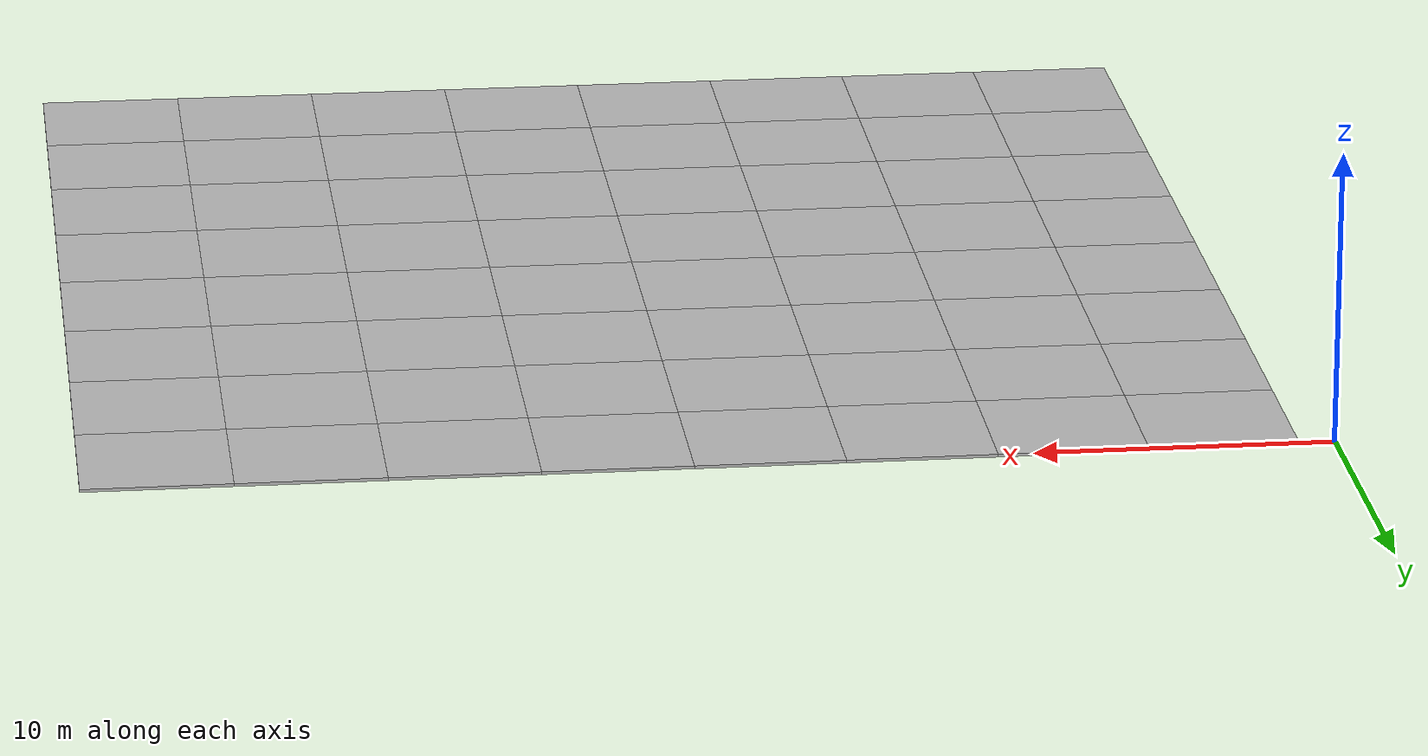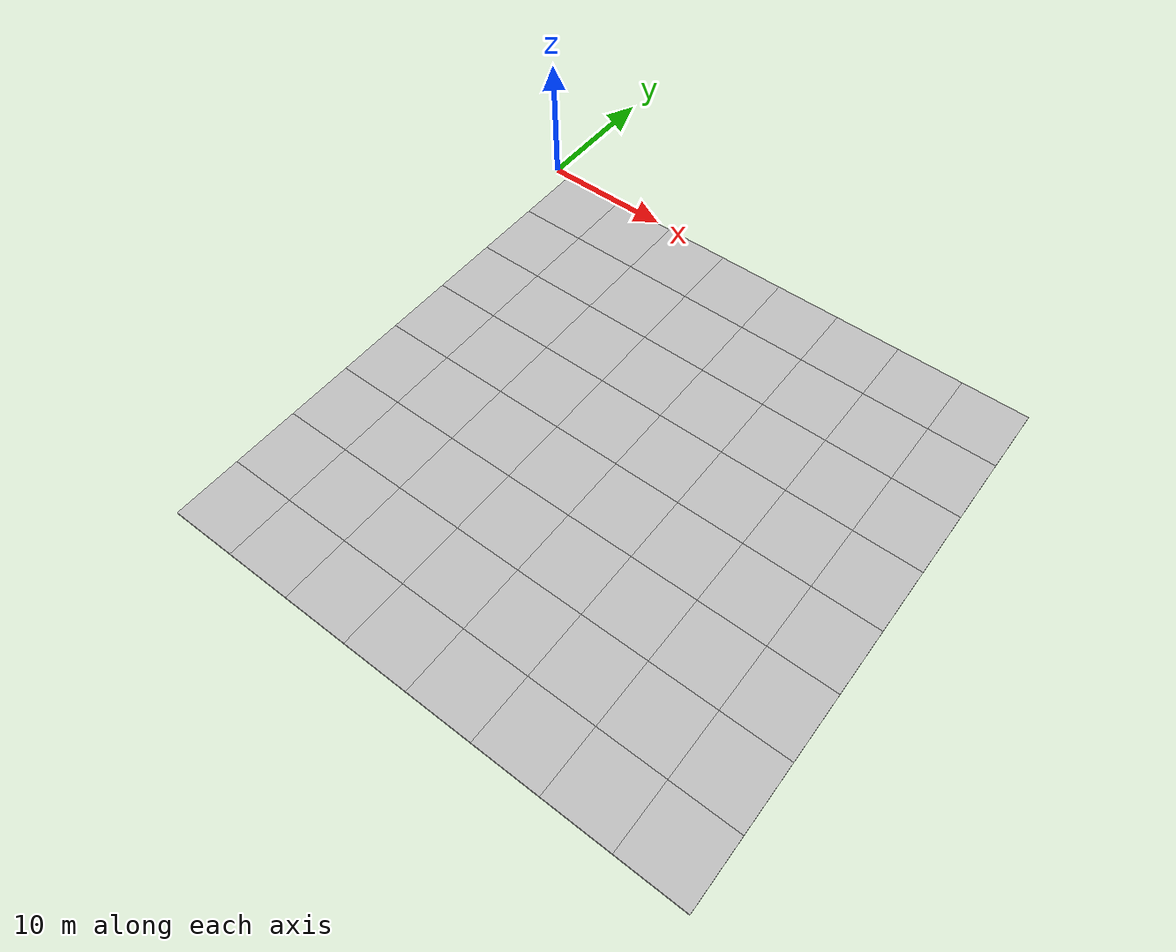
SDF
<sdf version="1.7">
 <world name="default">
  <model name="mud_plane_80x80_0">
   <model name="mud_plane_40x40_1">
    <model name="mud_plane_20x20">
     <model name="mud_plane">
      <static>1</static>
      <link name="link">
       <collision name="collision"><geometry><box><size>10 10 0.1</size></box></geometry></collision>
       <visual name="visual_1">
        <pose>-2.5 2.5 -0.05 0 -0 0</pose>
        <cast_shadows>0</cast_shadows>
        <geometry><box><size>5 5 0.1</size></box></geometry>
        <material>
         <script>
          <uri>model://mud_plane/materials/scripts</uri>
          <uri>model://mud_plane/materials/textures</uri>
          <name>vrc/mud</name>
         </script>
        </material>
       </visual>
       <visual name="visual_2">
        <pose>2.5 2.5 -0.05 0 -0 0</pose>
        <cast_shadows>0</cast_shadows>
        <geometry><box><size>5 5 0.1</size></box></geometry>
        <material>
         <script>
          <uri>model://mud_plane/materials/scripts</uri>
          <uri>model://mud_plane/materials/textures</uri>
          <name>vrc/mud</name>
         </script>
        </material>
       </visual>
       <visual name="visual_3">
        <pose>2.5 -2.5 -0.05 0 -0 0</pose>
        <cast_shadows>0</cast_shadows>
        <geometry><box><size>5 5 0.1</size></box></geometry>
        <material>
         <script>
          <uri>model://mud_plane/materials/scripts</uri>
          <uri>model://mud_plane/materials/textures</uri>
          <name>vrc/mud</name>
         </script>
        </material>
       </visual>
       <visual name="visual_4">
        <pose>-2.5 -2.5 -0.05 0 -0 0</pose>
        <cast_shadows>0</cast_shadows>
        <geometry><box><size>5 5 0.1</size></box></geometry>
        <material>
         <script>
          <uri>model://mud_plane/materials/scripts</uri>
          <uri>model://mud_plane/materials/textures</uri>
          <name>vrc/mud</name>
         </script>
        </material>
       </visual>
      </link>
      <pose>-4.99986 -4.99991 0 0 -0 0</pose>
     </model>
     <model name="mud_plane_0">
      <static>1</static>
      <link name="link">
       <collision name="collision"><geometry><box><size>10 10 0.1</size></box></geometry></collision>
       <visual name="visual_1">
        <pose>-2.5 2.5 -0.05 0 -0 0</pose>
        <cast_shadows>0</cast_shadows>
        <geometry><box><size>5 5 0.1</size></box></geometry>
        <material>
         <script>
          <uri>model://mud_plane/materials/scripts</uri>
          <uri>model://mud_plane/materials/textures</uri>
          <name>vrc/mud</name>
         </script>
        </material>
       </visual>
       <visual name="visual_2">
        <pose>2.5 2.5 -0.05 0 -0 0</pose>
        <cast_shadows>0</cast_shadows>
        <geometry><box><size>5 5 0.1</size></box></geometry>
        <material>
         <script>
          <uri>model://mud_plane/materials/scripts</uri>
          <uri>model://mud_plane/materials/textures</uri>
          <name>vrc/mud</name>
         </script>
        </material>
       </visual>
       <visual name="visual_3">
        <pose>2.5 -2.5 -0.05 0 -0 0</pose>
        <cast_shadows>0</cast_shadows>
        <geometry><box><size>5 5 0.1</size></box></geometry>
        <material>
         <script>
          <uri>model://mud_plane/materials/scripts</uri>
          <uri>model://mud_plane/materials/textures</uri>
          <name>vrc/mud</name>
         </script>
        </material>
       </visual>
       <visual name="visual_4">
        <pose>-2.5 -2.5 -0.05 0 -0 0</pose>
        <cast_shadows>0</cast_shadows>
        <geometry><box><size>5 5 0.1</size></box></geometry>
        <material>
         <script>
          <uri>model://mud_plane/materials/scripts</uri>
          <uri>model://mud_plane/materials/textures</uri>
          <name>vrc/mud</name>
         </script>
        </material>
       </visual>
      </link>
      <pose>-4.99946 4.99954 0 0 -0 0</pose>
     </model>
     <model name="mud_plane_1">
      <static>1</static>
      <link name="link">
       <collision name="collision"><geometry><box><size>10 10 0.1</size></box></geometry></collision>
       <visual name="visual_1">
        <pose>-2.5 2.5 -0.05 0 -0 0</pose>
        <cast_shadows>0</cast_shadows>
        <geometry><box><size>5 5 0.1</size></box></geometry>
        <material>
         <script>
          <uri>model://mud_plane/materials/scripts</uri>
          <uri>model://mud_plane/materials/textures</uri>
          <name>vrc/mud</name>
         </script>
        </material>
       </visual>
       <visual name="visual_2">
        <pose>2.5 2.5 -0.05 0 -0 0</pose>
        <cast_shadows>0</cast_shadows>
        <geometry><box><size>5 5 0.1</size></box></geometry>
        <material>
         <script>
          <uri>model://mud_plane/materials/scripts</uri>
          <uri>model://mud_plane/materials/textures</uri>
          <name>vrc/mud</name>
         </script>
        </material>
       </visual>
       <visual name="visual_3">
        <pose>2.5 -2.5 -0.05 0 -0 0</pose>
        <cast_shadows>0</cast_shadows>
        <geometry><box><size>5 5 0.1</size></box></geometry>
        <material>
         <script>
          <uri>model://mud_plane/materials/scripts</uri>
          <uri>model://mud_plane/materials/textures</uri>
          <name>vrc/mud</name>
         </script>
        </material>
       </visual>
       <visual name="visual_4">
        <pose>-2.5 -2.5 -0.05 0 -0 0</pose>
        <cast_shadows>0</cast_shadows>
        <geometry><box><size>5 5 0.1</size></box></geometry>
        <material>
         <script>
          <uri>model://mud_plane/materials/scripts</uri>
          <uri>model://mud_plane/materials/textures</uri>
          <name>vrc/mud</name>
         </script>
        </material>
       </visual>
      </link>
      <pose>4.99964 -4.99949 0 0 -0 0</pose>
     </model>
     <model name="mud_plane_2">
      <static>1</static>
      <link name="link">
       <collision name="collision"><geometry><box><size>10 10 0.1</size></box></geometry></collision>
       <visual name="visual_1">
        <pose>-2.5 2.5 -0.05 0 -0 0</pose>
        <cast_shadows>0</cast_shadows>
        <geometry><box><size>5 5 0.1</size></box></geometry>
        <material>
         <script>
          <uri>model://mud_plane/materials/scripts</uri>
          <uri>model://mud_plane/materials/textures</uri>
          <name>vrc/mud</name>
         </script>
        </material>
       </visual>
       <visual name="visual_2">
        <pose>2.5 2.5 -0.05 0 -0 0</pose>
        <cast_shadows>0</cast_shadows>
        <geometry><box><size>5 5 0.1</size></box></geometry>
        <material>
         <script>
          <uri>model://mud_plane/materials/scripts</uri>
          <uri>model://mud_plane/materials/textures</uri>
          <name>vrc/mud</name>
         </script>
        </material>
       </visual>
       <visual name="visual_3">
        <pose>2.5 -2.5 -0.05 0 -0 0</pose>
        <cast_shadows>0</cast_shadows>
        <geometry><box><size>5 5 0.1</size></box></geometry>
        <material>
         <script>
          <uri>model://mud_plane/materials/scripts</uri>
          <uri>model://mud_plane/materials/textures</uri>
          <name>vrc/mud</name>
         </script>
        </material>
       </visual>
       <visual name="visual_4">
        <pose>-2.5 -2.5 -0.05 0 -0 0</pose>
        <cast_shadows>0</cast_shadows>
        <geometry><box><size>5 5 0.1</size></box></geometry>
        <material>
         <script>
          <uri>model://mud_plane/materials/scripts</uri>
          <uri>model://mud_plane/materials/textures</uri>
          <name>vrc/mud</name>
         </script>
        </material>
       </visual>
      </link>
      <pose>4.99967 4.99986 0 0 -0 0</pose>
     </model>
     <static>0</static>
     <pose>-9.99895 9.99843 0 0 -0 0</pose>
    </model>
    <model name="mud_plane_20x20_0">
     <model name="mud_plane">
      <static>1</static>
      <link name="link">
       <collision name="collision"><geometry><box><size>10 10 0.1</size></box></geometry></collision>
       <visual name="visual_1">
        <pose>-2.5 2.5 -0.05 0 -0 0</pose>
        <cast_shadows>0</cast_shadows>
        <geometry><box><size>5 5 0.1</size></box></geometry>
        <material>
         <script>
          <uri>model://mud_plane/materials/scripts</uri>
          <uri>model://mud_plane/materials/textures</uri>
          <name>vrc/mud</name>
         </script>
        </material>
       </visual>
       <visual name="visual_2">
        <pose>2.5 2.5 -0.05 0 -0 0</pose>
        <cast_shadows>0</cast_shadows>
        <geometry><box><size>5 5 0.1</size></box></geometry>
        <material>
         <script>
          <uri>model://mud_plane/materials/scripts</uri>
          <uri>model://mud_plane/materials/textures</uri>
          <name>vrc/mud</name>
         </script>
        </material>
       </visual>
       <visual name="visual_3">
        <pose>2.5 -2.5 -0.05 0 -0 0</pose>
        <cast_shadows>0</cast_shadows>
        <geometry><box><size>5 5 0.1</size></box></geometry>
        <material>
         <script>
          <uri>model://mud_plane/materials/scripts</uri>
          <uri>model://mud_plane/materials/textures</uri>
          <name>vrc/mud</name>
         </script>
        </material>
       </visual>
       <visual name="visual_4">
        <pose>-2.5 -2.5 -0.05 0 -0 0</pose>
        <cast_shadows>0</cast_shadows>
        <geometry><box><size>5 5 0.1</size></box></geometry>
        <material>
         <script>
          <uri>model://mud_plane/materials/scripts</uri>
          <uri>model://mud_plane/materials/textures</uri>
          <name>vrc/mud</name>
         </script>
        </material>
       </visual>
      </link>
      <pose>-4.99986 -4.99991 0 0 -0 0</pose>
     </model>
     <model name="mud_plane_0">
      <static>1</static>
      <link name="link">
       <collision name="collision"><geometry><box><size>10 10 0.1</size></box></geometry></collision>
       <visual name="visual_1">
        <pose>-2.5 2.5 -0.05 0 -0 0</pose>
        <cast_shadows>0</cast_shadows>
        <geometry><box><size>5 5 0.1</size></box></geometry>
        <material>
         <script>
          <uri>model://mud_plane/materials/scripts</uri>
          <uri>model://mud_plane/materials/textures</uri>
          <name>vrc/mud</name>
         </script>
        </material>
       </visual>
       <visual name="visual_2">
        <pose>2.5 2.5 -0.05 0 -0 0</pose>
        <cast_shadows>0</cast_shadows>
        <geometry><box><size>5 5 0.1</size></box></geometry>
        <material>
         <script>
          <uri>model://mud_plane/materials/scripts</uri>
          <uri>model://mud_plane/materials/textures</uri>
          <name>vrc/mud</name>
         </script>
        </material>
       </visual>
       <visual name="visual_3">
        <pose>2.5 -2.5 -0.05 0 -0 0</pose>
        <cast_shadows>0</cast_shadows>
        <geometry><box><size>5 5 0.1</size></box></geometry>
        <material>
         <script>
          <uri>model://mud_plane/materials/scripts</uri>
          <uri>model://mud_plane/materials/textures</uri>
          <name>vrc/mud</name>
         </script>
        </material>
       </visual>
       <visual name="visual_4">
        <pose>-2.5 -2.5 -0.05 0 -0 0</pose>
        <cast_shadows>0</cast_shadows>
        <geometry><box><size>5 5 0.1</size></box></geometry>
        <material>
         <script>
          <uri>model://mud_plane/materials/scripts</uri>
          <uri>model://mud_plane/materials/textures</uri>
          <name>vrc/mud</name>
         </script>
        </material>
       </visual>
      </link>
      <pose>-4.99946 4.99954 0 0 -0 0</pose>
     </model>
     <model name="mud_plane_1">
      <static>1</static>
      <link name="link">
       <collision name="collision"><geometry><box><size>10 10 0.1</size></box></geometry></collision>
       <visual name="visual_1">
        <pose>-2.5 2.5 -0.05 0 -0 0</pose>
        <cast_shadows>0</cast_shadows>
        <geometry><box><size>5 5 0.1</size></box></geometry>
        <material>
         <script>
          <uri>model://mud_plane/materials/scripts</uri>
          <uri>model://mud_plane/materials/textures</uri>
          <name>vrc/mud</name>
         </script>
        </material>
       </visual>
       <visual name="visual_2">
        <pose>2.5 2.5 -0.05 0 -0 0</pose>
        <cast_shadows>0</cast_shadows>
        <geometry><box><size>5 5 0.1</size></box></geometry>
        <material>
         <script>
          <uri>model://mud_plane/materials/scripts</uri>
          <uri>model://mud_plane/materials/textures</uri>
          <name>vrc/mud</name>
         </script>
        </material>
       </visual>
       <visual name="visual_3">
        <pose>2.5 -2.5 -0.05 0 -0 0</pose>
        <cast_shadows>0</cast_shadows>
        <geometry><box><size>5 5 0.1</size></box></geometry>
        <material>
         <script>
          <uri>model://mud_plane/materials/scripts</uri>
          <uri>model://mud_plane/materials/textures</uri>
          <name>vrc/mud</name>
         </script>
        </material>
       </visual>
       <visual name="visual_4">
        <pose>-2.5 -2.5 -0.05 0 -0 0</pose>
        <cast_shadows>0</cast_shadows>
        <geometry><box><size>5 5 0.1</size></box></geometry>
        <material>
         <script>
          <uri>model://mud_plane/materials/scripts</uri>
          <uri>model://mud_plane/materials/textures</uri>
          <name>vrc/mud</name>
         </script>
        </material>
       </visual>
      </link>
      <pose>4.99964 -4.99949 0 0 -0 0</pose>
     </model>
     <model name="mud_plane_2">
      <static>1</static>
      <link name="link">
       <collision name="collision"><geometry><box><size>10 10 0.1</size></box></geometry></collision>
       <visual name="visual_1">
        <pose>-2.5 2.5 -0.05 0 -0 0</pose>
        <cast_shadows>0</cast_shadows>
        <geometry><box><size>5 5 0.1</size></box></geometry>
        <material>
         <script>
          <uri>model://mud_plane/materials/scripts</uri>
          <uri>model://mud_plane/materials/textures</uri>
          <name>vrc/mud</name>
         </script>
        </material>
       </visual>
       <visual name="visual_2">
        <pose>2.5 2.5 -0.05 0 -0 0</pose>
        <cast_shadows>0</cast_shadows>
        <geometry><box><size>5 5 0.1</size></box></geometry>
        <material>
         <script>
          <uri>model://mud_plane/materials/scripts</uri>
          <uri>model://mud_plane/materials/textures</uri>
          <name>vrc/mud</name>
         </script>
        </material>
       </visual>
       <visual name="visual_3">
        <pose>2.5 -2.5 -0.05 0 -0 0</pose>
        <cast_shadows>0</cast_shadows>
        <geometry><box><size>5 5 0.1</size></box></geometry>
        <material>
         <script>
          <uri>model://mud_plane/materials/scripts</uri>
          <uri>model://mud_plane/materials/textures</uri>
          <name>vrc/mud</name>
         </script>
        </material>
       </visual>
       <visual name="visual_4">
        <pose>-2.5 -2.5 -0.05 0 -0 0</pose>
        <cast_shadows>0</cast_shadows>
        <geometry><box><size>5 5 0.1</size></box></geometry>
        <material>
         <script>
          <uri>model://mud_plane/materials/scripts</uri>
          <uri>model://mud_plane/materials/textures</uri>
          <name>vrc/mud</name>
         </script>
        </material>
       </visual>
      </link>
      <pose>4.99967 4.99986 0 0 -0 0</pose>
     </model>
     <static>0</static>
     <pose>9.99933 9.9997 0 0 -0 0</pose>
    </model>
    <model name="mud_plane_20x20_1">
     <model name="mud_plane">
      <static>1</static>
      <link name="link">
       <collision name="collision"><geometry><box><size>10 10 0.1</size></box></geometry></collision>
       <visual name="visual_1">
        <pose>-2.5 2.5 -0.05 0 -0 0</pose>
        <cast_shadows>0</cast_shadows>
        <geometry><box><size>5 5 0.1</size></box></geometry>
        <material>
         <script>
          <uri>model://mud_plane/materials/scripts</uri>
          <uri>model://mud_plane/materials/textures</uri>
          <name>vrc/mud</name>
         </script>
        </material>
       </visual>
       <visual name="visual_2">
        <pose>2.5 2.5 -0.05 0 -0 0</pose>
        <cast_shadows>0</cast_shadows>
        <geometry><box><size>5 5 0.1</size></box></geometry>
        <material>
         <script>
          <uri>model://mud_plane/materials/scripts</uri>
          <uri>model://mud_plane/materials/textures</uri>
          <name>vrc/mud</name>
         </script>
        </material>
       </visual>
       <visual name="visual_3">
        <pose>2.5 -2.5 -0.05 0 -0 0</pose>
        <cast_shadows>0</cast_shadows>
        <geometry><box><size>5 5 0.1</size></box></geometry>
        <material>
         <script>
          <uri>model://mud_plane/materials/scripts</uri>
          <uri>model://mud_plane/materials/textures</uri>
          <name>vrc/mud</name>
         </script>
        </material>
       </visual>
       <visual name="visual_4">
        <pose>-2.5 -2.5 -0.05 0 -0 0</pose>
        <cast_shadows>0</cast_shadows>
        <geometry><box><size>5 5 0.1</size></box></geometry>
        <material>
         <script>
          <uri>model://mud_plane/materials/scripts</uri>
          <uri>model://mud_plane/materials/textures</uri>
          <name>vrc/mud</name>
         </script>
        </material>
       </visual>
      </link>
      <pose>-4.99986 -4.99991 0 0 -0 0</pose>
     </model>
     <model name="mud_plane_0">
      <static>1</static>
      <link name="link">
       <collision name="collision"><geometry><box><size>10 10 0.1</size></box></geometry></collision>
       <visual name="visual_1">
        <pose>-2.5 2.5 -0.05 0 -0 0</pose>
        <cast_shadows>0</cast_shadows>
        <geometry><box><size>5 5 0.1</size></box></geometry>
        <material>
         <script>
          <uri>model://mud_plane/materials/scripts</uri>
          <uri>model://mud_plane/materials/textures</uri>
          <name>vrc/mud</name>
         </script>
        </material>
       </visual>
       <visual name="visual_2">
        <pose>2.5 2.5 -0.05 0 -0 0</pose>
        <cast_shadows>0</cast_shadows>
        <geometry><box><size>5 5 0.1</size></box></geometry>
        <material>
         <script>
          <uri>model://mud_plane/materials/scripts</uri>
          <uri>model://mud_plane/materials/textures</uri>
          <name>vrc/mud</name>
         </script>
        </material>
       </visual>
       <visual name="visual_3">
        <pose>2.5 -2.5 -0.05 0 -0 0</pose>
        <cast_shadows>0</cast_shadows>
        <geometry><box><size>5 5 0.1</size></box></geometry>
        <material>
         <script>
          <uri>model://mud_plane/materials/scripts</uri>
          <uri>model://mud_plane/materials/textures</uri>
          <name>vrc/mud</name>
         </script>
        </material>
       </visual>
       <visual name="visual_4">
        <pose>-2.5 -2.5 -0.05 0 -0 0</pose>
        <cast_shadows>0</cast_shadows>
        <geometry><box><size>5 5 0.1</size></box></geometry>
        <material>
         <script>
          <uri>model://mud_plane/materials/scripts</uri>
          <uri>model://mud_plane/materials/textures</uri>
          <name>vrc/mud</name>
         </script>
        </material>
       </visual>
      </link>
      <pose>-4.99946 4.99954 0 0 -0 0</pose>
     </model>
     <model name="mud_plane_1">
      <static>1</static>
      <link name="link">
       <collision name="collision"><geometry><box><size>10 10 0.1</size></box></geometry></collision>
       <visual name="visual_1">
        <pose>-2.5 2.5 -0.05 0 -0 0</pose>
        <cast_shadows>0</cast_shadows>
        <geometry><box><size>5 5 0.1</size></box></geometry>
        <material>
         <script>
          <uri>model://mud_plane/materials/scripts</uri>
          <uri>model://mud_plane/materials/textures</uri>
          <name>vrc/mud</name>
         </script>
        </material>
       </visual>
       <visual name="visual_2">
        <pose>2.5 2.5 -0.05 0 -0 0</pose>
        <cast_shadows>0</cast_shadows>
        <geometry><box><size>5 5 0.1</size></box></geometry>
        <material>
         <script>
          <uri>model://mud_plane/materials/scripts</uri>
          <uri>model://mud_plane/materials/textures</uri>
          <name>vrc/mud</name>
         </script>
        </material>
       </visual>
       <visual name="visual_3">
        <pose>2.5 -2.5 -0.05 0 -0 0</pose>
        <cast_shadows>0</cast_shadows>
        <geometry><box><size>5 5 0.1</size></box></geometry>
        <material>
         <script>
          <uri>model://mud_plane/materials/scripts</uri>
          <uri>model://mud_plane/materials/textures</uri>
          <name>vrc/mud</name>
         </script>
        </material>
       </visual>
       <visual name="visual_4">
        <pose>-2.5 -2.5 -0.05 0 -0 0</pose>
        <cast_shadows>0</cast_shadows>
        <geometry><box><size>5 5 0.1</size></box></geometry>
        <material>
         <script>
          <uri>model://mud_plane/materials/scripts</uri>
          <uri>model://mud_plane/materials/textures</uri>
          <name>vrc/mud</name>
         </script>
        </material>
       </visual>
      </link>
      <pose>4.99964 -4.99949 0 0 -0 0</pose>
     </model>
     <model name="mud_plane_2">
      <static>1</static>
      <link name="link">
       <collision name="collision"><geometry><box><size>10 10 0.1</size></box></geometry></collision>
       <visual name="visual_1">
        <pose>-2.5 2.5 -0.05 0 -0 0</pose>
        <cast_shadows>0</cast_shadows>
        <geometry><box><size>5 5 0.1</size></box></geometry>
        <material>
         <script>
          <uri>model://mud_plane/materials/scripts</uri>
          <uri>model://mud_plane/materials/textures</uri>
          <name>vrc/mud</name>
         </script>
        </material>
       </visual>
       <visual name="visual_2">
        <pose>2.5 2.5 -0.05 0 -0 0</pose>
        <cast_shadows>0</cast_shadows>
        <geometry><box><size>5 5 0.1</size></box></geometry>
        <material>
         <script>
          <uri>model://mud_plane/materials/scripts</uri>
          <uri>model://mud_plane/materials/textures</uri>
          <name>vrc/mud</name>
         </script>
        </material>
       </visual>
       <visual name="visual_3">
        <pose>2.5 -2.5 -0.05 0 -0 0</pose>
        <cast_shadows>0</cast_shadows>
        <geometry><box><size>5 5 0.1</size></box></geometry>
        <material>
         <script>
          <uri>model://mud_plane/materials/scripts</uri>
          <uri>model://mud_plane/materials/textures</uri>
          <name>vrc/mud</name>
         </script>
        </material>
       </visual>
       <visual name="visual_4">
        <pose>-2.5 -2.5 -0.05 0 -0 0</pose>
        <cast_shadows>0</cast_shadows>
        <geometry><box><size>5 5 0.1</size></box></geometry>
        <material>
         <script>
          <uri>model://mud_plane/materials/scripts</uri>
          <uri>model://mud_plane/materials/textures</uri>
          <name>vrc/mud</name>
         </script>
        </material>
       </visual>
      </link>
      <pose>4.99967 4.99986 0 0 -0 0</pose>
     </model>
     <static>0</static>
     <pose>9.9993 -9.99877 0 0 -0 0</pose>
    </model>
    <model name="mud_plane_20x20_2">
     <model name="mud_plane">
      <static>1</static>
      <link name="link">
       <collision name="collision"><geometry><box><size>10 10 0.1</size></box></geometry></collision>
       <visual name="visual_1">
        <pose>-2.5 2.5 -0.05 0 -0 0</pose>
        <cast_shadows>0</cast_shadows>
        <geometry><box><size>5 5 0.1</size></box></geometry>
        <material>
         <script>
          <uri>model://mud_plane/materials/scripts</uri>
          <uri>model://mud_plane/materials/textures</uri>
          <name>vrc/mud</name>
         </script>
        </material>
       </visual>
       <visual name="visual_2">
        <pose>2.5 2.5 -0.05 0 -0 0</pose>
        <cast_shadows>0</cast_shadows>
        <geometry><box><size>5 5 0.1</size></box></geometry>
        <material>
         <script>
          <uri>model://mud_plane/materials/scripts</uri>
          <uri>model://mud_plane/materials/textures</uri>
          <name>vrc/mud</name>
         </script>
        </material>
       </visual>
       <visual name="visual_3">
        <pose>2.5 -2.5 -0.05 0 -0 0</pose>
        <cast_shadows>0</cast_shadows>
        <geometry><box><size>5 5 0.1</size></box></geometry>
        <material>
         <script>
          <uri>model://mud_plane/materials/scripts</uri>
          <uri>model://mud_plane/materials/textures</uri>
          <name>vrc/mud</name>
         </script>
        </material>
       </visual>
       <visual name="visual_4">
        <pose>-2.5 -2.5 -0.05 0 -0 0</pose>
        <cast_shadows>0</cast_shadows>
        <geometry><box><size>5 5 0.1</size></box></geometry>
        <material>
         <script>
          <uri>model://mud_plane/materials/scripts</uri>
          <uri>model://mud_plane/materials/textures</uri>
          <name>vrc/mud</name>
         </script>
        </material>
       </visual>
      </link>
      <pose>-4.99986 -4.99991 0 0 -0 0</pose>
     </model>
     <model name="mud_plane_0">
      <static>1</static>
      <link name="link">
       <collision name="collision"><geometry><box><size>10 10 0.1</size></box></geometry></collision>
       <visual name="visual_1">
        <pose>-2.5 2.5 -0.05 0 -0 0</pose>
        <cast_shadows>0</cast_shadows>
        <geometry><box><size>5 5 0.1</size></box></geometry>
        <material>
         <script>
          <uri>model://mud_plane/materials/scripts</uri>
          <uri>model://mud_plane/materials/textures</uri>
          <name>vrc/mud</name>
         </script>
        </material>
       </visual>
       <visual name="visual_2">
        <pose>2.5 2.5 -0.05 0 -0 0</pose>
        <cast_shadows>0</cast_shadows>
        <geometry><box><size>5 5 0.1</size></box></geometry>
        <material>
         <script>
          <uri>model://mud_plane/materials/scripts</uri>
          <uri>model://mud_plane/materials/textures</uri>
          <name>vrc/mud</name>
         </script>
        </material>
       </visual>
       <visual name="visual_3">
        <pose>2.5 -2.5 -0.05 0 -0 0</pose>
        <cast_shadows>0</cast_shadows>
        <geometry><box><size>5 5 0.1</size></box></geometry>
        <material>
         <script>
          <uri>model://mud_plane/materials/scripts</uri>
          <uri>model://mud_plane/materials/textures</uri>
          <name>vrc/mud</name>
         </script>
        </material>
       </visual>
       <visual name="visual_4">
        <pose>-2.5 -2.5 -0.05 0 -0 0</pose>
        <cast_shadows>0</cast_shadows>
        <geometry><box><size>5 5 0.1</size></box></geometry>
        <material>
         <script>
          <uri>model://mud_plane/materials/scripts</uri>
          <uri>model://mud_plane/materials/textures</uri>
          <name>vrc/mud</name>
         </script>
        </material>
       </visual>
      </link>
      <pose>-4.99946 4.99954 0 0 -0 0</pose>
     </model>
     <model name="mud_plane_1">
      <static>1</static>
      <link name="link">
       <collision name="collision"><geometry><box><size>10 10 0.1</size></box></geometry></collision>
       <visual name="visual_1">
        <pose>-2.5 2.5 -0.05 0 -0 0</pose>
        <cast_shadows>0</cast_shadows>
        <geometry><box><size>5 5 0.1</size></box></geometry>
        <material>
         <script>
          <uri>model://mud_plane/materials/scripts</uri>
          <uri>model://mud_plane/materials/textures</uri>
          <name>vrc/mud</name>
         </script>
        </material>
       </visual>
       <visual name="visual_2">
        <pose>2.5 2.5 -0.05 0 -0 0</pose>
        <cast_shadows>0</cast_shadows>
        <geometry><box><size>5 5 0.1</size></box></geometry>
        <material>
         <script>
          <uri>model://mud_plane/materials/scripts</uri>
          <uri>model://mud_plane/materials/textures</uri>
          <name>vrc/mud</name>
         </script>
        </material>
       </visual>
       <visual name="visual_3">
        <pose>2.5 -2.5 -0.05 0 -0 0</pose>
        <cast_shadows>0</cast_shadows>
        <geometry><box><size>5 5 0.1</size></box></geometry>
        <material>
         <script>
          <uri>model://mud_plane/materials/scripts</uri>
          <uri>model://mud_plane/materials/textures</uri>
          <name>vrc/mud</name>
         </script>
        </material>
       </visual>
       <visual name="visual_4">
        <pose>-2.5 -2.5 -0.05 0 -0 0</pose>
        <cast_shadows>0</cast_shadows>
        <geometry><box><size>5 5 0.1</size></box></geometry>
        <material>
         <script>
          <uri>model://mud_plane/materials/scripts</uri>
          <uri>model://mud_plane/materials/textures</uri>
          <name>vrc/mud</name>
         </script>
        </material>
       </visual>
      </link>
      <pose>4.99964 -4.99949 0 0 -0 0</pose>
     </model>
     <model name="mud_plane_2">
      <static>1</static>
      <link name="link">
       <collision name="collision"><geometry><box><size>10 10 0.1</size></box></geometry></collision>
       <visual name="visual_1">
        <pose>-2.5 2.5 -0.05 0 -0 0</pose>
        <cast_shadows>0</cast_shadows>
        <geometry><box><size>5 5 0.1</size></box></geometry>
        <material>
         <script>
          <uri>model://mud_plane/materials/scripts</uri>
          <uri>model://mud_plane/materials/textures</uri>
          <name>vrc/mud</name>
         </script>
        </material>
       </visual>
       <visual name="visual_2">
        <pose>2.5 2.5 -0.05 0 -0 0</pose>
        <cast_shadows>0</cast_shadows>
        <geometry><box><size>5 5 0.1</size></box></geometry>
        <material>
         <script>
          <uri>model://mud_plane/materials/scripts</uri>
          <uri>model://mud_plane/materials/textures</uri>
          <name>vrc/mud</name>
         </script>
        </material>
       </visual>
       <visual name="visual_3">
        <pose>2.5 -2.5 -0.05 0 -0 0</pose>
        <cast_shadows>0</cast_shadows>
        <geometry><box><size>5 5 0.1</size></box></geometry>
        <material>
         <script>
          <uri>model://mud_plane/materials/scripts</uri>
          <uri>model://mud_plane/materials/textures</uri>
          <name>vrc/mud</name>
         </script>
        </material>
       </visual>
       <visual name="visual_4">
        <pose>-2.5 -2.5 -0.05 0 -0 0</pose>
        <cast_shadows>0</cast_shadows>
        <geometry><box><size>5 5 0.1</size></box></geometry>
        <material>
         <script>
          <uri>model://mud_plane/materials/scripts</uri>
          <uri>model://mud_plane/materials/textures</uri>
          <name>vrc/mud</name>
         </script>
        </material>
       </visual>
      </link>
      <pose>4.99967 4.99986 0 0 -0 0</pose>
     </model>
     <static>0</static>
     <pose>-9.99969 -9.99935 0 0 -0 0</pose>
    </model>
    <static>0</static>
    <pose>-19.9982 19.9977 0 0 -0 0</pose>
   </model>
   <static>0</static>
   <pose>41.1505 -40.0966 0 0 -0 0</pose>
  </model>
 </world>
</sdf>
